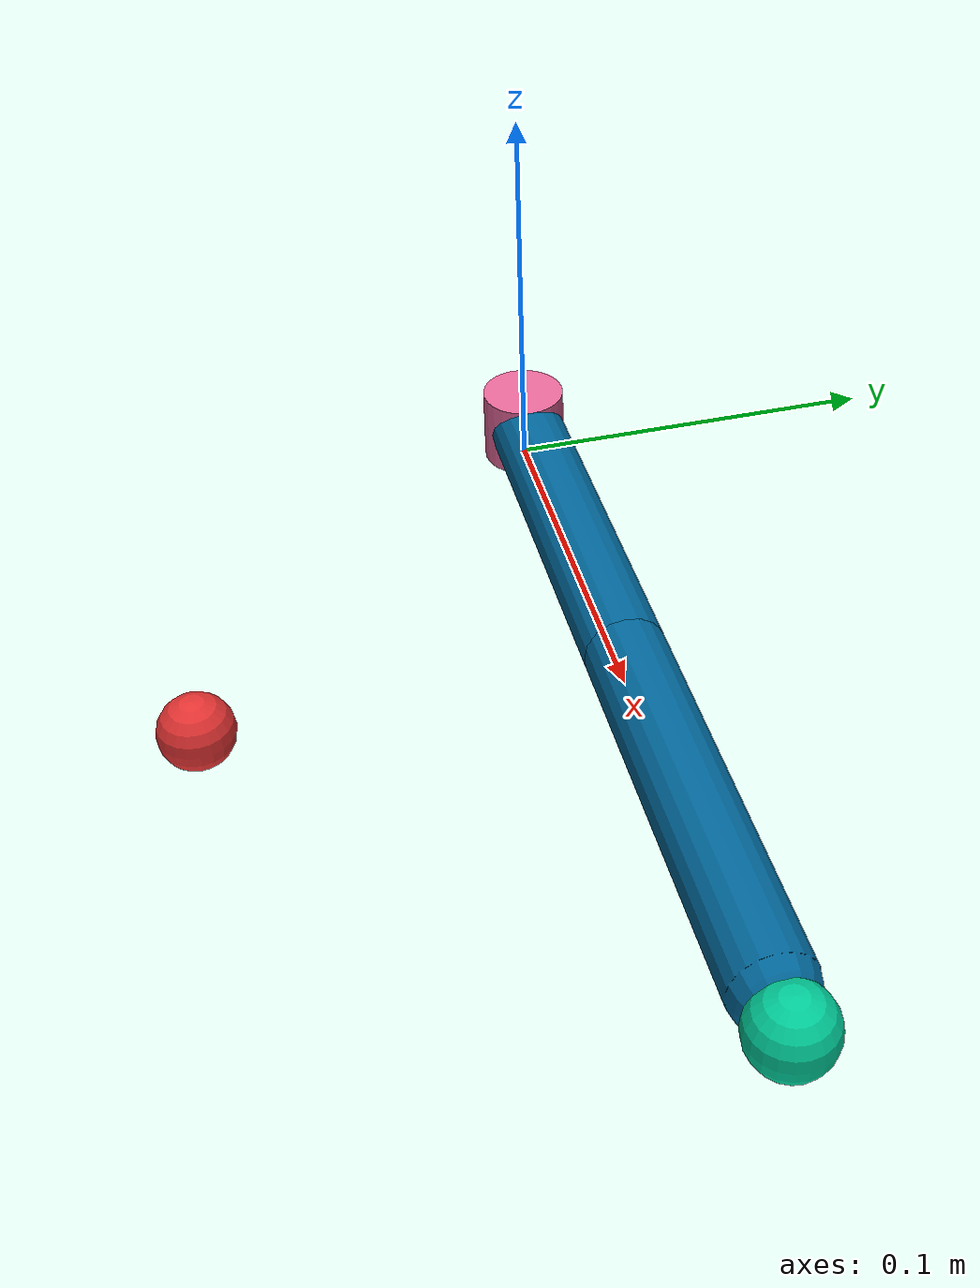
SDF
<?xml version="1.0"?>
<sdf version="1.8">
  <world name="reacher">

    <physics name="fast" type="ignored">
      <max_step_size>0.01</max_step_size>
      <real_time_update_rate>0</real_time_update_rate>
    </physics>

    <plugin filename="gz-sim-physics-system"           name="gz::sim::systems::Physics"/>
    <plugin filename="gz-sim-scene-broadcaster-system" name="gz::sim::systems::SceneBroadcaster"/>
    <plugin filename="gz-sim-user-commands-system"     name="gz::sim::systems::UserCommands"/>

    <light name="sun" type="directional">
      <cast_shadows>true</cast_shadows>
      <pose>0 0 10 0 0 0</pose>
      <diffuse>0.8 0.8 0.8 1</diffuse>
      <specular>0.2 0.2 0.2 1</specular>
      <attenuation><range>1000</range><constant>0.9</constant><linear>0.01</linear><quadratic>0.001</quadratic></attenuation>
      <direction>-0.5 0.1 -0.9</direction>
    </light>

    <model name="reacher">
      <pose>0 0 0 0 0 0</pose>

      <!-- Fixed mount (root) anchored to world -->
      <link name="mount">
        <inertial>
          <mass>1</mass>
          <inertia><ixx>0.001</ixx><ixy>0</ixy><ixz>0</ixz><iyy>0.001</iyy><iyz>0</iyz><izz>0.001</izz></inertia>
        </inertial>
        <!-- Small cylinder as visual anchor -->
        <visual name="mount_visual">
          <pose>0 0 0.01 0 0 0</pose>
          <geometry><cylinder><radius>0.011</radius><length>0.02</length></cylinder></geometry>
          <material><diffuse>0.9 0.4 0.6 1</diffuse><ambient>0.9 0.4 0.6 1</ambient></material>
        </visual>
      </link>

      <!-- Fix mount to world -->
      <joint name="mount_fixed" type="fixed">
        <parent>world</parent>
        <child>mount</child>
      </joint>

      <!-- Shoulder joint: unlimited Z rotation -->
      <joint name="joint0" type="revolute">
        <pose relative_to="mount">0 0 0.01 0 0 0</pose>
        <parent>mount</parent>
        <child>body0</child>
        <axis>
          <xyz>0 0 1</xyz>
          <limit>
            <lower>-1e16</lower>
            <upper>1e16</upper>
            <effort>200</effort>
            <velocity>100</velocity>
          </limit>
          <dynamics><damping>1.0</damping></dynamics>
        </axis>
      </joint>

      <!-- Link 0: first arm segment, horizontal, L=0.1 m along X -->
      <link name="body0">
        <pose relative_to="joint0">0 0 0 0 0 0</pose>
        <inertial>
          <pose>0.05 0 0 0 0 0</pose>
          <mass>0.035</mass>
          <inertia><ixx>0.000029</ixx><ixy>0</ixy><ixz>0</ixz><iyy>0.000029</iyy><iyz>0</iyz><izz>0.0000058</izz></inertia>
        </inertial>
        <collision name="body0_collision">
          <pose>0.05 0 0 0 1.5708 0</pose>
          <geometry><capsule><radius>0.01</radius><length>0.1</length></capsule></geometry>
        </collision>
        <visual name="body0_visual">
          <pose>0.05 0 0 0 1.5708 0</pose>
          <geometry><capsule><radius>0.01</radius><length>0.1</length></capsule></geometry>
          <material><diffuse>0.0 0.4 0.6 1</diffuse><ambient>0.0 0.4 0.6 1</ambient></material>
        </visual>
      </link>

      <!-- Elbow joint: ±3 rad Z rotation -->
      <joint name="joint1" type="revolute">
        <pose relative_to="body0">0.1 0 0 0 0 0</pose>
        <parent>body0</parent>
        <child>body1</child>
        <axis>
          <xyz>0 0 1</xyz>
          <limit>
            <lower>-3.0</lower>
            <upper>3.0</upper>
            <effort>200</effort>
            <velocity>100</velocity>
          </limit>
          <dynamics><damping>1.0</damping></dynamics>
        </axis>
      </joint>

      <!-- Link 1: second arm segment, L=0.1 m along X, plus fingertip -->
      <link name="body1">
        <pose relative_to="joint1">0 0 0 0 0 0</pose>
        <inertial>
          <pose>0.05 0 0 0 0 0</pose>
          <mass>0.035</mass>
          <inertia><ixx>0.000029</ixx><ixy>0</ixy><ixz>0</ixz><iyy>0.000029</iyy><iyz>0</iyz><izz>0.0000058</izz></inertia>
        </inertial>
        <collision name="body1_collision">
          <pose>0.05 0 0 0 1.5708 0</pose>
          <geometry><capsule><radius>0.01</radius><length>0.1</length></capsule></geometry>
        </collision>
        <visual name="body1_visual">
          <pose>0.05 0 0 0 1.5708 0</pose>
          <geometry><capsule><radius>0.01</radius><length>0.1</length></capsule></geometry>
          <material><diffuse>0.0 0.4 0.6 1</diffuse><ambient>0.0 0.4 0.6 1</ambient></material>
        </visual>
        <!-- Fingertip sphere at (0.11,0,0) from body1 link origin -->
        <visual name="fingertip_visual">
          <pose>0.11 0 0 0 0 0</pose>
          <geometry><sphere><radius>0.01</radius></sphere></geometry>
          <material><diffuse>0.0 0.8 0.6 1</diffuse><ambient>0.0 0.8 0.6 1</ambient></material>
        </visual>
      </link>

      <!-- Force controllers: /model/reacher/joint/{joint0,joint1}/cmd_force -->
      <plugin filename="gz-sim-joint-controller-system" name="gz::sim::systems::JointController">
        <joint_name>joint0</joint_name>
        <use_force_commands>true</use_force_commands>
        <cmd_max>200</cmd_max><cmd_min>-200</cmd_min>
      </plugin>
      <plugin filename="gz-sim-joint-controller-system" name="gz::sim::systems::JointController">
        <joint_name>joint1</joint_name>
        <use_force_commands>true</use_force_commands>
        <cmd_max>200</cmd_max><cmd_min>-200</cmd_min>
      </plugin>

      <plugin filename="gz-sim-joint-state-publisher-system" name="gz::sim::systems::JointStatePublisher">
        <joint_name>joint0</joint_name>
        <joint_name>joint1</joint_name>
      </plugin>
    </model>

    <model name="reacher_target">
      <pose>0.1 -0.1 0.01 0 0 0</pose>
      <link name="target_link">
        <inertial>
          <mass>0.001</mass>
          <inertia><ixx>0.000001</ixx><ixy>0</ixy><ixz>0</ixz><iyy>0.000001</iyy><iyz>0</iyz><izz>0.000001</izz></inertia>
        </inertial>
        <visual name="target_visual">
          <geometry><sphere><radius>0.009</radius></sphere></geometry>
          <material><diffuse>0.9 0.2 0.2 1</diffuse><ambient>0.9 0.2 0.2 1</ambient></material>
        </visual>
        <!-- No collision — target is visual-only -->
      </link>
    </model>

  </world>
</sdf>
